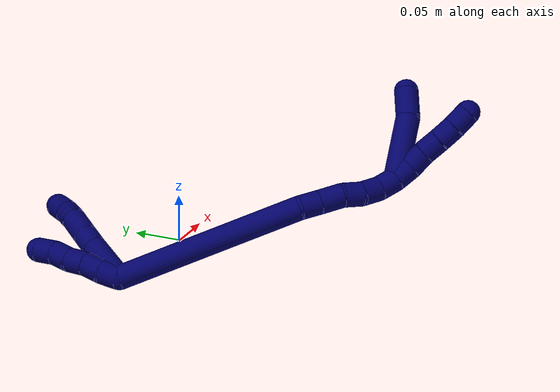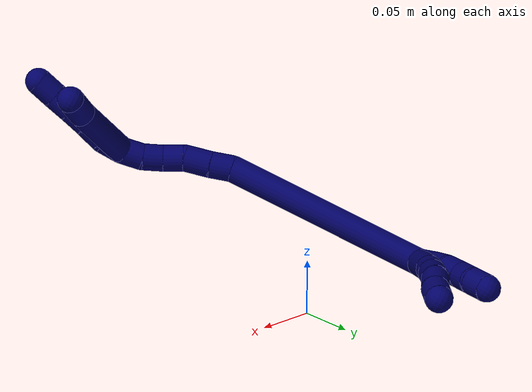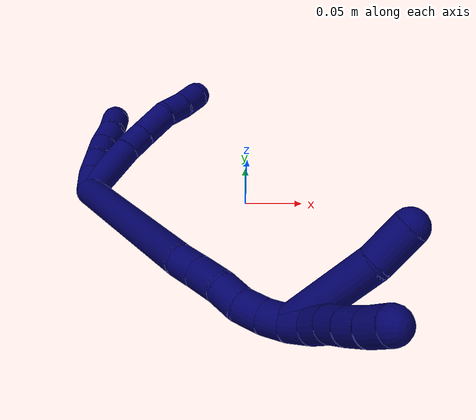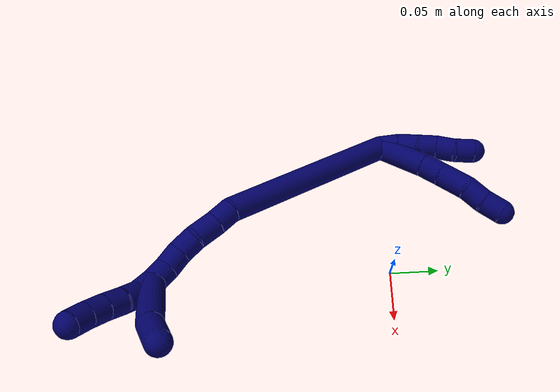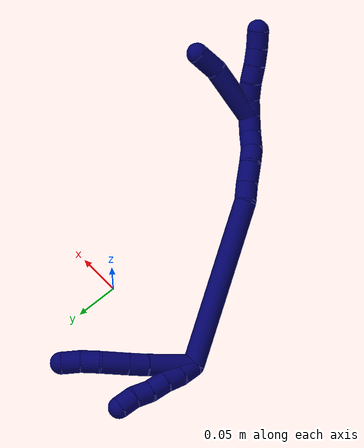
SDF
<sdf version="1.7">
 <world name="default">
  <model name="photoneo_s_sensor">
   <static>1</static>
   <pose>0 0 2 1.57079 1.57079 3.14159</pose>
   <link name="link">
    <inertial><mass>0.1</mass></inertial>
    <sensor name="sensor" type="depth">
     <update_rate>30</update_rate>
     <camera>
      <horizontal_fov>1.22</horizontal_fov>
      <image><width>1920</width><height>1200</height><format>B8G8R8</format></image>
      <clip><near>0.1</near><far>4</far></clip>
      <depth_camera><output>points</output></depth_camera>
     </camera>
     <plugin name="camera_plugin" filename="libgazebo_ros_depth_camera.so">
      <baseline>0.2</baseline>
      <alwaysOn>1</alwaysOn>
      <updateRate>0.0</updateRate>
      <cameraName>camera_ir</cameraName>
      <imageTopicName>/camera/color/image_raw</imageTopicName>
      <cameraInfoTopicName>/camera/color/camera_info</cameraInfoTopicName>
      <depthImageTopicName>/camera/depth/image_raw</depthImageTopicName>
      <depthImageCameraInfoTopicName>/camera/depth/camera_info</depthImageCameraInfoTopicName>
      <pointCloudTopicName>/camera/depth/points</pointCloudTopicName>
      <frameName>fr_optical</frameName>
      <pointCloudCutoff>0.1</pointCloudCutoff>
      <pointCloudCutoffMax>2.0</pointCloudCutoffMax>
      <distortionK1>0</distortionK1>
      <distortionK2>0</distortionK2>
      <distortionK3>0</distortionK3>
      <distortionT1>0</distortionT1>
      <distortionT2>0</distortionT2>
      <CxPrime>0</CxPrime>
      <Cx>0</Cx>
      <Cy>0</Cy>
      <focalLength>0</focalLength>
      <hackBaseline>0</hackBaseline>
     </plugin>
    </sensor>
   </link>
  </model>
  <model name="bin">
   <static>1</static>
   <link name="bottom">
    <collision name="collision-bottom">
     <pose>0 0 -0.01 0 -0 0</pose>
     <geometry><box><size>0.8 0.6 0.02</size></box></geometry>
     <surface>
      <friction><ode><mu>100</mu><mu2>100</mu2></ode></friction>
      <contact><collide_bitmask>65535</collide_bitmask></contact>
     </surface>
    </collision>
   </link>
   <link name="west_wall">
    <collision name="collision-west_wall">
     <pose>-0.41 0 0.1 0 -0 0</pose>
     <geometry><box><size>0.02 0.6 0.2</size></box></geometry>
     <surface>
      <friction><ode><mu>100</mu><mu2>100</mu2></ode></friction>
      <contact><collide_bitmask>65535</collide_bitmask></contact>
     </surface>
    </collision>
   </link>
   <link name="east_wall">
    <collision name="collision-east_wall">
     <pose>0.41 0 0.1 0 -0 0</pose>
     <geometry><box><size>0.02 0.6 0.2</size></box></geometry>
     <surface>
      <friction><ode><mu>100</mu><mu2>100</mu2></ode></friction>
      <contact><collide_bitmask>65535</collide_bitmask></contact>
     </surface>
    </collision>
   </link>
   <link name="south_wall">
    <collision name="collision-south_wall">
     <pose>0 -0.31 0.1 0 -0 0</pose>
     <geometry><box><size>0.8 0.02 0.2</size></box></geometry>
     <surface>
      <friction><ode><mu>100</mu><mu2>100</mu2></ode></friction>
      <contact><collide_bitmask>65535</collide_bitmask></contact>
     </surface>
    </collision>
   </link>
   <link name="north_wall">
    <collision name="collision-north_wall">
     <pose>0 0.31 0.1 0 -0 0</pose>
     <geometry><box><size>0.8 0.02 0.2</size></box></geometry>
     <surface>
      <friction><ode><mu>100</mu><mu2>100</mu2></ode></friction>
      <contact><collide_bitmask>65535</collide_bitmask></contact>
     </surface>
    </collision>
   </link>
  </model>
  <model name="7">
   <static>0</static>
   <link name="7">
    <collision name="collision-cylinder-e_1_2_8">
     <pose>-0.00747 0.025771 0.000795 -1.53995 -0.281994 0.273535</pose>
     <geometry><cylinder><radius>0.0125</radius><length>0.053687</length></cylinder></geometry>
     <surface>
      <friction><ode><mu>1.16</mu><mu2>1.16</mu2><slip1>0</slip1><slip2>0</slip2></ode></friction>
      <contact><ode><kp>1e+06</kp><kd>1</kd><max_vel>0</max_vel><min_depth>0.001</min_depth></ode></contact>
     </surface>
    </collision>
    <visual name="visual-cylinder-e_1_2_8">
     <pose>-0.00747 0.025771 0.000795 -1.53995 -0.281994 0.273535</pose>
     <geometry><cylinder><radius>0.0125</radius><length>0.053687</length></cylinder></geometry>
     <material><ambient>0.003922 0 0.403922 1</ambient></material>
    </visual>
    <collision name="collision-cylinder-e_2_8_9">
     <pose>-0.017144 0.062168 0.002315 -1.50277 -0.204123 0.190773</pose>
     <geometry><cylinder><radius>0.0125</radius><length>0.021754</length></cylinder></geometry>
     <surface>
      <friction><ode><mu>1.16</mu><mu2>1.16</mu2><slip1>0</slip1><slip2>0</slip2></ode></friction>
      <contact><ode><kp>1e+06</kp><kd>1</kd><max_vel>0</max_vel><min_depth>0.001</min_depth></ode></contact>
     </surface>
    </collision>
    <visual name="visual-cylinder-e_2_8_9">
     <pose>-0.017144 0.062168 0.002315 -1.50277 -0.204123 0.190773</pose>
     <geometry><cylinder><radius>0.0125</radius><length>0.021754</length></cylinder></geometry>
     <material><ambient>0.003922 0 0.403922 1</ambient></material>
    </visual>
    <collision name="collision-cylinder-e_3_9_10">
     <pose>-0.022413 0.088092 0.00423 -1.49307 -0.19707 0.182402</pose>
     <geometry><cylinder><radius>0.0125</radius><length>0.031294</length></cylinder></geometry>
     <surface>
      <friction><ode><mu>1.16</mu><mu2>1.16</mu2><slip1>0</slip1><slip2>0</slip2></ode></friction>
      <contact><ode><kp>1e+06</kp><kd>1</kd><max_vel>0</max_vel><min_depth>0.001</min_depth></ode></contact>
     </surface>
    </collision>
    <visual name="visual-cylinder-e_3_9_10">
     <pose>-0.022413 0.088092 0.00423 -1.49307 -0.19707 0.182402</pose>
     <geometry><cylinder><radius>0.0125</radius><length>0.031294</length></cylinder></geometry>
     <material><ambient>0.003922 0 0.403922 1</ambient></material>
    </visual>
    <collision name="collision-cylinder-e_4_10_11">
     <pose>-0.024771 0.114197 0.005845 -1.5316 0.065144 -0.062641</pose>
     <geometry><cylinder><radius>0.0125</radius><length>0.021677</length></cylinder></geometry>
     <surface>
      <friction><ode><mu>1.16</mu><mu2>1.16</mu2><slip1>0</slip1><slip2>0</slip2></ode></friction>
      <contact><ode><kp>1e+06</kp><kd>1</kd><max_vel>0</max_vel><min_depth>0.001</min_depth></ode></contact>
     </surface>
    </collision>
    <visual name="visual-cylinder-e_4_10_11">
     <pose>-0.024771 0.114197 0.005845 -1.5316 0.065144 -0.062641</pose>
     <geometry><cylinder><radius>0.0125</radius><length>0.021677</length></cylinder></geometry>
     <material><ambient>0.003922 0 0.403922 1</ambient></material>
    </visual>
    <collision name="collision-cylinder-e_5_11_6">
     <pose>-0.02433 0.135756 0.005343 -1.65672 -0.024566 0.026773</pose>
     <geometry><cylinder><radius>0.0125</radius><length>0.021589</length></cylinder></geometry>
     <surface>
      <friction><ode><mu>1.16</mu><mu2>1.16</mu2><slip1>0</slip1><slip2>0</slip2></ode></friction>
      <contact><ode><kp>1e+06</kp><kd>1</kd><max_vel>0</max_vel><min_depth>0.001</min_depth></ode></contact>
     </surface>
    </collision>
    <visual name="visual-cylinder-e_5_11_6">
     <pose>-0.02433 0.135756 0.005343 -1.65672 -0.024566 0.026773</pose>
     <geometry><cylinder><radius>0.0125</radius><length>0.021589</length></cylinder></geometry>
     <material><ambient>0.003922 0 0.403922 1</ambient></material>
    </visual>
    <collision name="collision-cylinder-e_1_2_12">
     <pose>-0.004495 0.007405 -0.004996 -2.16432 -0.466246 0.840079</pose>
     <geometry><cylinder><radius>0.0125</radius><length>0.02</length></cylinder></geometry>
     <surface>
      <friction><ode><mu>1.16</mu><mu2>1.16</mu2><slip1>0</slip1><slip2>0</slip2></ode></friction>
      <contact><ode><kp>1e+06</kp><kd>1</kd><max_vel>0</max_vel><min_depth>0.001</min_depth></ode></contact>
     </surface>
    </collision>
    <visual name="visual-cylinder-e_1_2_12">
     <pose>-0.004495 0.007405 -0.004996 -2.16432 -0.466246 0.840079</pose>
     <geometry><cylinder><radius>0.0125</radius><length>0.02</length></cylinder></geometry>
     <material><ambient>0.003922 0 0.403922 1</ambient></material>
    </visual>
    <collision name="collision-cylinder-e_2_12_13">
     <pose>-0.012945 0.023295 -0.013509 -1.96374 -0.406518 0.598547</pose>
     <geometry><cylinder><radius>0.0125</radius><length>0.02</length></cylinder></geometry>
     <surface>
      <friction><ode><mu>1.16</mu><mu2>1.16</mu2><slip1>0</slip1><slip2>0</slip2></ode></friction>
      <contact><ode><kp>1e+06</kp><kd>1</kd><max_vel>0</max_vel><min_depth>0.001</min_depth></ode></contact>
     </surface>
    </collision>
    <visual name="visual-cylinder-e_2_12_13">
     <pose>-0.012945 0.023295 -0.013509 -1.96374 -0.406518 0.598547</pose>
     <geometry><cylinder><radius>0.0125</radius><length>0.02</length></cylinder></geometry>
     <material><ambient>0.003922 0 0.403922 1</ambient></material>
    </visual>
    <collision name="collision-cylinder-e_3_13_14">
     <pose>-0.019663 0.039986 -0.022028 -2.11824 -0.280005 0.491745</pose>
     <geometry><cylinder><radius>0.0125</radius><length>0.02</length></cylinder></geometry>
     <surface>
      <friction><ode><mu>1.16</mu><mu2>1.16</mu2><slip1>0</slip1><slip2>0</slip2></ode></friction>
      <contact><ode><kp>1e+06</kp><kd>1</kd><max_vel>0</max_vel><min_depth>0.001</min_depth></ode></contact>
     </surface>
    </collision>
    <visual name="visual-cylinder-e_3_13_14">
     <pose>-0.019663 0.039986 -0.022028 -2.11824 -0.280005 0.491745</pose>
     <geometry><cylinder><radius>0.0125</radius><length>0.02</length></cylinder></geometry>
     <material><ambient>0.003922 0 0.403922 1</ambient></material>
    </visual>
    <collision name="collision-cylinder-e_4_14_15">
     <pose>-0.025261 0.057258 -0.030156 -1.90274 -0.287463 0.400509</pose>
     <geometry><cylinder><radius>0.0125</radius><length>0.02</length></cylinder></geometry>
     <surface>
      <friction><ode><mu>1.16</mu><mu2>1.16</mu2><slip1>0</slip1><slip2>0</slip2></ode></friction>
      <contact><ode><kp>1e+06</kp><kd>1</kd><max_vel>0</max_vel><min_depth>0.001</min_depth></ode></contact>
     </surface>
    </collision>
    <visual name="visual-cylinder-e_4_14_15">
     <pose>-0.025261 0.057258 -0.030156 -1.90274 -0.287463 0.400509</pose>
     <geometry><cylinder><radius>0.0125</radius><length>0.02</length></cylinder></geometry>
     <material><ambient>0.003922 0 0.403922 1</ambient></material>
    </visual>
    <collision name="collision-cylinder-e_5_15_5">
     <pose>-0.030608 0.074309 -0.038752 -2.17158 -0.253903 0.475254</pose>
     <geometry><cylinder><radius>0.0125</radius><length>0.02</length></cylinder></geometry>
     <surface>
      <friction><ode><mu>1.16</mu><mu2>1.16</mu2><slip1>0</slip1><slip2>0</slip2></ode></friction>
      <contact><ode><kp>1e+06</kp><kd>1</kd><max_vel>0</max_vel><min_depth>0.001</min_depth></ode></contact>
     </surface>
    </collision>
    <visual name="visual-cylinder-e_5_15_5">
     <pose>-0.030608 0.074309 -0.038752 -2.17158 -0.253903 0.475254</pose>
     <geometry><cylinder><radius>0.0125</radius><length>0.02</length></cylinder></geometry>
     <material><ambient>0.003922 0 0.403922 1</ambient></material>
    </visual>
    <collision name="collision-cylinder-e_1_2_16">
     <pose>0.011202 -0.029722 0.091763 0.313238 0.115619 0.018278</pose>
     <geometry><cylinder><radius>0.0125</radius><length>0.19421</length></cylinder></geometry>
     <surface>
      <friction><ode><mu>1.16</mu><mu2>1.16</mu2><slip1>0</slip1><slip2>0</slip2></ode></friction>
      <contact><ode><kp>1e+06</kp><kd>1</kd><max_vel>0</max_vel><min_depth>0.001</min_depth></ode></contact>
     </surface>
    </collision>
    <visual name="visual-cylinder-e_1_2_16">
     <pose>0.011202 -0.029722 0.091763 0.313238 0.115619 0.018278</pose>
     <geometry><cylinder><radius>0.0125</radius><length>0.19421</length></cylinder></geometry>
     <material><ambient>0.003922 0 0.403922 1</ambient></material>
    </visual>
    <collision name="collision-cylinder-e_2_16_17">
     <pose>0.025939 -0.060495 0.193287 0.107225 0.345624 0.018734</pose>
     <geometry><cylinder><radius>0.0125</radius><length>0.020867</length></cylinder></geometry>
     <surface>
      <friction><ode><mu>1.16</mu><mu2>1.16</mu2><slip1>0</slip1><slip2>0</slip2></ode></friction>
      <contact><ode><kp>1e+06</kp><kd>1</kd><max_vel>0</max_vel><min_depth>0.001</min_depth></ode></contact>
     </surface>
    </collision>
    <visual name="visual-cylinder-e_2_16_17">
     <pose>0.025939 -0.060495 0.193287 0.107225 0.345624 0.018734</pose>
     <geometry><cylinder><radius>0.0125</radius><length>0.020867</length></cylinder></geometry>
     <material><ambient>0.003922 0 0.403922 1</ambient></material>
    </visual>
    <collision name="collision-cylinder-e_3_17_18">
     <pose>0.033025 -0.063503 0.214685 0.166657 0.292311 0.024588</pose>
     <geometry><cylinder><radius>0.0125</radius><length>0.024649</length></cylinder></geometry>
     <surface>
      <friction><ode><mu>1.16</mu><mu2>1.16</mu2><slip1>0</slip1><slip2>0</slip2></ode></friction>
      <contact><ode><kp>1e+06</kp><kd>1</kd><max_vel>0</max_vel><min_depth>0.001</min_depth></ode></contact>
     </surface>
    </collision>
    <visual name="visual-cylinder-e_3_17_18">
     <pose>0.033025 -0.063503 0.214685 0.166657 0.292311 0.024588</pose>
     <geometry><cylinder><radius>0.0125</radius><length>0.024649</length></cylinder></geometry>
     <material><ambient>0.003922 0 0.403922 1</ambient></material>
    </visual>
    <collision name="collision-cylinder-e_4_18_19">
     <pose>0.041905 -0.066707 0.234822 0.145617 0.555246 0.041566</pose>
     <geometry><cylinder><radius>0.0125</radius><length>0.020216</length></cylinder></geometry>
     <surface>
      <friction><ode><mu>1.16</mu><mu2>1.16</mu2><slip1>0</slip1><slip2>0</slip2></ode></friction>
      <contact><ode><kp>1e+06</kp><kd>1</kd><max_vel>0</max_vel><min_depth>0.001</min_depth></ode></contact>
     </surface>
    </collision>
    <visual name="visual-cylinder-e_4_18_19">
     <pose>0.041905 -0.066707 0.234822 0.145617 0.555246 0.041566</pose>
     <geometry><cylinder><radius>0.0125</radius><length>0.020216</length></cylinder></geometry>
     <material><ambient>0.003922 0 0.403922 1</ambient></material>
    </visual>
    <collision name="collision-cylinder-e_5_19_20">
     <pose>0.051265 -0.067221 0.252473 -0.079909 0.41373 -0.016779</pose>
     <geometry><cylinder><radius>0.0125</radius><length>0.020055</length></cylinder></geometry>
     <surface>
      <friction><ode><mu>1.16</mu><mu2>1.16</mu2><slip1>0</slip1><slip2>0</slip2></ode></friction>
      <contact><ode><kp>1e+06</kp><kd>1</kd><max_vel>0</max_vel><min_depth>0.001</min_depth></ode></contact>
     </surface>
    </collision>
    <visual name="visual-cylinder-e_5_19_20">
     <pose>0.051265 -0.067221 0.252473 -0.079909 0.41373 -0.016779</pose>
     <geometry><cylinder><radius>0.0125</radius><length>0.020055</length></cylinder></geometry>
     <material><ambient>0.003922 0 0.403922 1</ambient></material>
    </visual>
    <collision name="collision-cylinder-e_6_20_1">
     <pose>0.056906 -0.066066 0.271487 -0.042818 0.161636 -0.003469</pose>
     <geometry><cylinder><radius>0.0125</radius><length>0.020002</length></cylinder></geometry>
     <surface>
      <friction><ode><mu>1.16</mu><mu2>1.16</mu2><slip1>0</slip1><slip2>0</slip2></ode></friction>
      <contact><ode><kp>1e+06</kp><kd>1</kd><max_vel>0</max_vel><min_depth>0.001</min_depth></ode></contact>
     </surface>
    </collision>
    <visual name="visual-cylinder-e_6_20_1">
     <pose>0.056906 -0.066066 0.271487 -0.042818 0.161636 -0.003469</pose>
     <geometry><cylinder><radius>0.0125</radius><length>0.020002</length></cylinder></geometry>
     <material><ambient>0.003922 0 0.403922 1</ambient></material>
    </visual>
    <collision name="collision-cylinder-e_1_1_21">
     <pose>0.058111 -0.065424 0.291338 -0.021958 -0.040525 0.000445</pose>
     <geometry><cylinder><radius>0.0125</radius><length>0.02</length></cylinder></geometry>
     <surface>
      <friction><ode><mu>1.16</mu><mu2>1.16</mu2><slip1>0</slip1><slip2>0</slip2></ode></friction>
      <contact><ode><kp>1e+06</kp><kd>1</kd><max_vel>0</max_vel><min_depth>0.001</min_depth></ode></contact>
     </surface>
    </collision>
    <visual name="visual-cylinder-e_1_1_21">
     <pose>0.058111 -0.065424 0.291338 -0.021958 -0.040525 0.000445</pose>
     <geometry><cylinder><radius>0.0125</radius><length>0.02</length></cylinder></geometry>
     <material><ambient>0.003922 0 0.403922 1</ambient></material>
    </visual>
    <collision name="collision-cylinder-e_2_21_22">
     <pose>0.054948 -0.066276 0.31088 0.111776 -0.279337 -0.01573</pose>
     <geometry><cylinder><radius>0.0125</radius><length>0.02</length></cylinder></geometry>
     <surface>
      <friction><ode><mu>1.16</mu><mu2>1.16</mu2><slip1>0</slip1><slip2>0</slip2></ode></friction>
      <contact><ode><kp>1e+06</kp><kd>1</kd><max_vel>0</max_vel><min_depth>0.001</min_depth></ode></contact>
     </surface>
    </collision>
    <visual name="visual-cylinder-e_2_21_22">
     <pose>0.054948 -0.066276 0.31088 0.111776 -0.279337 -0.01573</pose>
     <geometry><cylinder><radius>0.0125</radius><length>0.02</length></cylinder></geometry>
     <material><ambient>0.003922 0 0.403922 1</ambient></material>
    </visual>
    <collision name="collision-cylinder-e_3_22_23">
     <pose>0.05026 -0.069382 0.330031 0.208736 -0.194341 -0.020421</pose>
     <geometry><cylinder><radius>0.0125</radius><length>0.02</length></cylinder></geometry>
     <surface>
      <friction><ode><mu>1.16</mu><mu2>1.16</mu2><slip1>0</slip1><slip2>0</slip2></ode></friction>
      <contact><ode><kp>1e+06</kp><kd>1</kd><max_vel>0</max_vel><min_depth>0.001</min_depth></ode></contact>
     </surface>
    </collision>
    <visual name="visual-cylinder-e_3_22_23">
     <pose>0.05026 -0.069382 0.330031 0.208736 -0.194341 -0.020421</pose>
     <geometry><cylinder><radius>0.0125</radius><length>0.02</length></cylinder></geometry>
     <material><ambient>0.003922 0 0.403922 1</ambient></material>
    </visual>
    <collision name="collision-cylinder-e_4_23_24">
     <pose>0.04639 -0.072776 0.349345 0.139185 -0.195148 -0.013646</pose>
     <geometry><cylinder><radius>0.0125</radius><length>0.02</length></cylinder></geometry>
     <surface>
      <friction><ode><mu>1.16</mu><mu2>1.16</mu2><slip1>0</slip1><slip2>0</slip2></ode></friction>
      <contact><ode><kp>1e+06</kp><kd>1</kd><max_vel>0</max_vel><min_depth>0.001</min_depth></ode></contact>
     </surface>
    </collision>
    <visual name="visual-cylinder-e_4_23_24">
     <pose>0.04639 -0.072776 0.349345 0.139185 -0.195148 -0.013646</pose>
     <geometry><cylinder><radius>0.0125</radius><length>0.02</length></cylinder></geometry>
     <material><ambient>0.003922 0 0.403922 1</ambient></material>
    </visual>
    <collision name="collision-cylinder-e_5_24_4">
     <pose>0.042038 -0.074644 0.368752 0.052287 -0.243649 -0.006403</pose>
     <geometry><cylinder><radius>0.0125</radius><length>0.02</length></cylinder></geometry>
     <surface>
      <friction><ode><mu>1.16</mu><mu2>1.16</mu2><slip1>0</slip1><slip2>0</slip2></ode></friction>
      <contact><ode><kp>1e+06</kp><kd>1</kd><max_vel>0</max_vel><min_depth>0.001</min_depth></ode></contact>
     </surface>
    </collision>
    <visual name="visual-cylinder-e_5_24_4">
     <pose>0.042038 -0.074644 0.368752 0.052287 -0.243649 -0.006403</pose>
     <geometry><cylinder><radius>0.0125</radius><length>0.02</length></cylinder></geometry>
     <material><ambient>0.003922 0 0.403922 1</ambient></material>
    </visual>
    <collision name="collision-cylinder-e_1_1_25">
     <pose>0.045646 -0.046338 0.307278 -0.639996 -0.378877 0.126908</pose>
     <geometry><cylinder><radius>0.0125</radius><length>0.069589</length></cylinder></geometry>
     <surface>
      <friction><ode><mu>1.16</mu><mu2>1.16</mu2><slip1>0</slip1><slip2>0</slip2></ode></friction>
      <contact><ode><kp>1e+06</kp><kd>1</kd><max_vel>0</max_vel><min_depth>0.001</min_depth></ode></contact>
     </surface>
    </collision>
    <visual name="visual-cylinder-e_1_1_25">
     <pose>0.045646 -0.046338 0.307278 -0.639996 -0.378877 0.126908</pose>
     <geometry><cylinder><radius>0.0125</radius><length>0.069589</length></cylinder></geometry>
     <material><ambient>0.003922 0 0.403922 1</ambient></material>
    </visual>
    <collision name="collision-cylinder-e_2_25_3">
     <pose>0.026074 -0.016406 0.341773 -0.892313 -0.456452 0.221296</pose>
     <geometry><cylinder><radius>0.0125</radius><length>0.030411</length></cylinder></geometry>
     <surface>
      <friction><ode><mu>1.16</mu><mu2>1.16</mu2><slip1>0</slip1><slip2>0</slip2></ode></friction>
      <contact><ode><kp>1e+06</kp><kd>1</kd><max_vel>0</max_vel><min_depth>0.001</min_depth></ode></contact>
     </surface>
    </collision>
    <visual name="visual-cylinder-e_2_25_3">
     <pose>0.026074 -0.016406 0.341773 -0.892313 -0.456452 0.221296</pose>
     <geometry><cylinder><radius>0.0125</radius><length>0.030411</length></cylinder></geometry>
     <material><ambient>0.003922 0 0.403922 1</ambient></material>
    </visual>
    <collision name="collision-sphere-3">
     <pose>0.019372 -0.00578 0.35034 0 -0 0</pose>
     <geometry><sphere><radius>0.0125</radius></sphere></geometry>
     <surface>
      <friction><ode><mu>1.16</mu><mu2>1.16</mu2><slip1>0</slip1><slip2>0</slip2></ode></friction>
      <contact><ode><kp>1e+06</kp><kd>1</kd><max_vel>0</max_vel><min_depth>0.001</min_depth></ode></contact>
     </surface>
    </collision>
    <visual name="visual-sphere-3">
     <pose>0.019372 -0.00578 0.35034 0 -0 0</pose>
     <geometry><sphere><radius>0.0125</radius></sphere></geometry>
     <material><ambient>0.003922 0 0.403922 1</ambient></material>
    </visual>
    <collision name="collision-sphere-25">
     <pose>0.032776 -0.027032 0.333207 0 -0 0</pose>
     <geometry><sphere><radius>0.0125</radius></sphere></geometry>
     <surface>
      <friction><ode><mu>1.16</mu><mu2>1.16</mu2><slip1>0</slip1><slip2>0</slip2></ode></friction>
      <contact><ode><kp>1e+06</kp><kd>1</kd><max_vel>0</max_vel><min_depth>0.001</min_depth></ode></contact>
     </surface>
    </collision>
    <visual name="visual-sphere-25">
     <pose>0.032776 -0.027032 0.333207 0 -0 0</pose>
     <geometry><sphere><radius>0.0125</radius></sphere></geometry>
     <material><ambient>0.003922 0 0.403922 1</ambient></material>
    </visual>
    <collision name="collision-sphere-4">
     <pose>0.039625 -0.075152 0.378443 0 -0 0</pose>
     <geometry><sphere><radius>0.0125</radius></sphere></geometry>
     <surface>
      <friction><ode><mu>1.16</mu><mu2>1.16</mu2><slip1>0</slip1><slip2>0</slip2></ode></friction>
      <contact><ode><kp>1e+06</kp><kd>1</kd><max_vel>0</max_vel><min_depth>0.001</min_depth></ode></contact>
     </surface>
    </collision>
    <visual name="visual-sphere-4">
     <pose>0.039625 -0.075152 0.378443 0 -0 0</pose>
     <geometry><sphere><radius>0.0125</radius></sphere></geometry>
     <material><ambient>0.003922 0 0.403922 1</ambient></material>
    </visual>
    <collision name="collision-sphere-24">
     <pose>0.04445 -0.074137 0.35906 0 -0 0</pose>
     <geometry><sphere><radius>0.0125</radius></sphere></geometry>
     <surface>
      <friction><ode><mu>1.16</mu><mu2>1.16</mu2><slip1>0</slip1><slip2>0</slip2></ode></friction>
      <contact><ode><kp>1e+06</kp><kd>1</kd><max_vel>0</max_vel><min_depth>0.001</min_depth></ode></contact>
     </surface>
    </collision>
    <visual name="visual-sphere-24">
     <pose>0.04445 -0.074137 0.35906 0 -0 0</pose>
     <geometry><sphere><radius>0.0125</radius></sphere></geometry>
     <material><ambient>0.003922 0 0.403922 1</ambient></material>
    </visual>
    <collision name="collision-sphere-23">
     <pose>0.048329 -0.071415 0.33963 0 -0 0</pose>
     <geometry><sphere><radius>0.0125</radius></sphere></geometry>
     <surface>
      <friction><ode><mu>1.16</mu><mu2>1.16</mu2><slip1>0</slip1><slip2>0</slip2></ode></friction>
      <contact><ode><kp>1e+06</kp><kd>1</kd><max_vel>0</max_vel><min_depth>0.001</min_depth></ode></contact>
     </surface>
    </collision>
    <visual name="visual-sphere-23">
     <pose>0.048329 -0.071415 0.33963 0 -0 0</pose>
     <geometry><sphere><radius>0.0125</radius></sphere></geometry>
     <material><ambient>0.003922 0 0.403922 1</ambient></material>
    </visual>
    <collision name="collision-sphere-22">
     <pose>0.052191 -0.067349 0.320432 0 -0 0</pose>
     <geometry><sphere><radius>0.0125</radius></sphere></geometry>
     <surface>
      <friction><ode><mu>1.16</mu><mu2>1.16</mu2><slip1>0</slip1><slip2>0</slip2></ode></friction>
      <contact><ode><kp>1e+06</kp><kd>1</kd><max_vel>0</max_vel><min_depth>0.001</min_depth></ode></contact>
     </surface>
    </collision>
    <visual name="visual-sphere-22">
     <pose>0.052191 -0.067349 0.320432 0 -0 0</pose>
     <geometry><sphere><radius>0.0125</radius></sphere></geometry>
     <material><ambient>0.003922 0 0.403922 1</ambient></material>
    </visual>
    <collision name="collision-sphere-21">
     <pose>0.057705 -0.065204 0.301327 0 -0 0</pose>
     <geometry><sphere><radius>0.0125</radius></sphere></geometry>
     <surface>
      <friction><ode><mu>1.16</mu><mu2>1.16</mu2><slip1>0</slip1><slip2>0</slip2></ode></friction>
      <contact><ode><kp>1e+06</kp><kd>1</kd><max_vel>0</max_vel><min_depth>0.001</min_depth></ode></contact>
     </surface>
    </collision>
    <visual name="visual-sphere-21">
     <pose>0.057705 -0.065204 0.301327 0 -0 0</pose>
     <geometry><sphere><radius>0.0125</radius></sphere></geometry>
     <material><ambient>0.003922 0 0.403922 1</ambient></material>
    </visual>
    <collision name="collision-sphere-1">
     <pose>0.058516 -0.065643 0.281349 0 -0 0</pose>
     <geometry><sphere><radius>0.0125</radius></sphere></geometry>
     <surface>
      <friction><ode><mu>1.16</mu><mu2>1.16</mu2><slip1>0</slip1><slip2>0</slip2></ode></friction>
      <contact><ode><kp>1e+06</kp><kd>1</kd><max_vel>0</max_vel><min_depth>0.001</min_depth></ode></contact>
     </surface>
    </collision>
    <visual name="visual-sphere-1">
     <pose>0.058516 -0.065643 0.281349 0 -0 0</pose>
     <geometry><sphere><radius>0.0125</radius></sphere></geometry>
     <material><ambient>0.003922 0 0.403922 1</ambient></material>
    </visual>
    <collision name="collision-sphere-6">
     <pose>-0.024596 0.146507 0.004417 0 -0 0</pose>
     <geometry><sphere><radius>0.0125</radius></sphere></geometry>
     <surface>
      <friction><ode><mu>1.16</mu><mu2>1.16</mu2><slip1>0</slip1><slip2>0</slip2></ode></friction>
      <contact><ode><kp>1e+06</kp><kd>1</kd><max_vel>0</max_vel><min_depth>0.001</min_depth></ode></contact>
     </surface>
    </collision>
    <visual name="visual-sphere-6">
     <pose>-0.024596 0.146507 0.004417 0 -0 0</pose>
     <geometry><sphere><radius>0.0125</radius></sphere></geometry>
     <material><ambient>0.003922 0 0.403922 1</ambient></material>
    </visual>
    <collision name="collision-sphere-11">
     <pose>-0.024065 0.125005 0.006269 0 -0 0</pose>
     <geometry><sphere><radius>0.0125</radius></sphere></geometry>
     <surface>
      <friction><ode><mu>1.16</mu><mu2>1.16</mu2><slip1>0</slip1><slip2>0</slip2></ode></friction>
      <contact><ode><kp>1e+06</kp><kd>1</kd><max_vel>0</max_vel><min_depth>0.001</min_depth></ode></contact>
     </surface>
    </collision>
    <visual name="visual-sphere-11">
     <pose>-0.024065 0.125005 0.006269 0 -0 0</pose>
     <geometry><sphere><radius>0.0125</radius></sphere></geometry>
     <material><ambient>0.003922 0 0.403922 1</ambient></material>
    </visual>
    <collision name="collision-sphere-10">
     <pose>-0.025476 0.10339 0.005422 0 -0 0</pose>
     <geometry><sphere><radius>0.0125</radius></sphere></geometry>
     <surface>
      <friction><ode><mu>1.16</mu><mu2>1.16</mu2><slip1>0</slip1><slip2>0</slip2></ode></friction>
      <contact><ode><kp>1e+06</kp><kd>1</kd><max_vel>0</max_vel><min_depth>0.001</min_depth></ode></contact>
     </surface>
    </collision>
    <visual name="visual-sphere-10">
     <pose>-0.025476 0.10339 0.005422 0 -0 0</pose>
     <geometry><sphere><radius>0.0125</radius></sphere></geometry>
     <material><ambient>0.003922 0 0.403922 1</ambient></material>
    </visual>
    <collision name="collision-sphere-9">
     <pose>-0.019349 0.072795 0.003039 0 -0 0</pose>
     <geometry><sphere><radius>0.0125</radius></sphere></geometry>
     <surface>
      <friction><ode><mu>1.16</mu><mu2>1.16</mu2><slip1>0</slip1><slip2>0</slip2></ode></friction>
      <contact><ode><kp>1e+06</kp><kd>1</kd><max_vel>0</max_vel><min_depth>0.001</min_depth></ode></contact>
     </surface>
    </collision>
    <visual name="visual-sphere-9">
     <pose>-0.019349 0.072795 0.003039 0 -0 0</pose>
     <geometry><sphere><radius>0.0125</radius></sphere></geometry>
     <material><ambient>0.003922 0 0.403922 1</ambient></material>
    </visual>
    <collision name="collision-sphere-2">
     <geometry><sphere><radius>0.0125</radius></sphere></geometry>
     <surface>
      <friction><ode><mu>1.16</mu><mu2>1.16</mu2><slip1>0</slip1><slip2>0</slip2></ode></friction>
      <contact><ode><kp>1e+06</kp><kd>1</kd><max_vel>0</max_vel><min_depth>0.001</min_depth></ode></contact>
     </surface>
    </collision>
    <visual name="visual-sphere-2">
     <geometry><sphere><radius>0.0125</radius></sphere></geometry>
     <material><ambient>0.003922 0 0.403922 1</ambient></material>
    </visual>
    <collision name="collision-sphere-19">
     <pose>0.047234 -0.067954 0.24332 0 -0 0</pose>
     <geometry><sphere><radius>0.0125</radius></sphere></geometry>
     <surface>
      <friction><ode><mu>1.16</mu><mu2>1.16</mu2><slip1>0</slip1><slip2>0</slip2></ode></friction>
      <contact><ode><kp>1e+06</kp><kd>1</kd><max_vel>0</max_vel><min_depth>0.001</min_depth></ode></contact>
     </surface>
    </collision>
    <visual name="visual-sphere-19">
     <pose>0.047234 -0.067954 0.24332 0 -0 0</pose>
     <geometry><sphere><radius>0.0125</radius></sphere></geometry>
     <material><ambient>0.003922 0 0.403922 1</ambient></material>
    </visual>
    <collision name="collision-sphere-8">
     <pose>-0.01494 0.051542 0.001591 0 -0 0</pose>
     <geometry><sphere><radius>0.0125</radius></sphere></geometry>
     <surface>
      <friction><ode><mu>1.16</mu><mu2>1.16</mu2><slip1>0</slip1><slip2>0</slip2></ode></friction>
      <contact><ode><kp>1e+06</kp><kd>1</kd><max_vel>0</max_vel><min_depth>0.001</min_depth></ode></contact>
     </surface>
    </collision>
    <visual name="visual-sphere-8">
     <pose>-0.01494 0.051542 0.001591 0 -0 0</pose>
     <geometry><sphere><radius>0.0125</radius></sphere></geometry>
     <material><ambient>0.003922 0 0.403922 1</ambient></material>
    </visual>
    <collision name="collision-sphere-12">
     <pose>-0.008991 0.01481 -0.009992 0 -0 0</pose>
     <geometry><sphere><radius>0.0125</radius></sphere></geometry>
     <surface>
      <friction><ode><mu>1.16</mu><mu2>1.16</mu2><slip1>0</slip1><slip2>0</slip2></ode></friction>
      <contact><ode><kp>1e+06</kp><kd>1</kd><max_vel>0</max_vel><min_depth>0.001</min_depth></ode></contact>
     </surface>
    </collision>
    <visual name="visual-sphere-12">
     <pose>-0.008991 0.01481 -0.009992 0 -0 0</pose>
     <geometry><sphere><radius>0.0125</radius></sphere></geometry>
     <material><ambient>0.003922 0 0.403922 1</ambient></material>
    </visual>
    <collision name="collision-sphere-13">
     <pose>-0.016899 0.03178 -0.017026 0 -0 0</pose>
     <geometry><sphere><radius>0.0125</radius></sphere></geometry>
     <surface>
      <friction><ode><mu>1.16</mu><mu2>1.16</mu2><slip1>0</slip1><slip2>0</slip2></ode></friction>
      <contact><ode><kp>1e+06</kp><kd>1</kd><max_vel>0</max_vel><min_depth>0.001</min_depth></ode></contact>
     </surface>
    </collision>
    <visual name="visual-sphere-13">
     <pose>-0.016899 0.03178 -0.017026 0 -0 0</pose>
     <geometry><sphere><radius>0.0125</radius></sphere></geometry>
     <material><ambient>0.003922 0 0.403922 1</ambient></material>
    </visual>
    <collision name="collision-sphere-14">
     <pose>-0.022426 0.048192 -0.027031 0 -0 0</pose>
     <geometry><sphere><radius>0.0125</radius></sphere></geometry>
     <surface>
      <friction><ode><mu>1.16</mu><mu2>1.16</mu2><slip1>0</slip1><slip2>0</slip2></ode></friction>
      <contact><ode><kp>1e+06</kp><kd>1</kd><max_vel>0</max_vel><min_depth>0.001</min_depth></ode></contact>
     </surface>
    </collision>
    <visual name="visual-sphere-14">
     <pose>-0.022426 0.048192 -0.027031 0 -0 0</pose>
     <geometry><sphere><radius>0.0125</radius></sphere></geometry>
     <material><ambient>0.003922 0 0.403922 1</ambient></material>
    </visual>
    <collision name="collision-sphere-15">
     <pose>-0.028097 0.066324 -0.033281 0 -0 0</pose>
     <geometry><sphere><radius>0.0125</radius></sphere></geometry>
     <surface>
      <friction><ode><mu>1.16</mu><mu2>1.16</mu2><slip1>0</slip1><slip2>0</slip2></ode></friction>
      <contact><ode><kp>1e+06</kp><kd>1</kd><max_vel>0</max_vel><min_depth>0.001</min_depth></ode></contact>
     </surface>
    </collision>
    <visual name="visual-sphere-15">
     <pose>-0.028097 0.066324 -0.033281 0 -0 0</pose>
     <geometry><sphere><radius>0.0125</radius></sphere></geometry>
     <material><ambient>0.003922 0 0.403922 1</ambient></material>
    </visual>
    <collision name="collision-sphere-5">
     <pose>-0.03312 0.082293 -0.044224 0 -0 0</pose>
     <geometry><sphere><radius>0.0125</radius></sphere></geometry>
     <surface>
      <friction><ode><mu>1.16</mu><mu2>1.16</mu2><slip1>0</slip1><slip2>0</slip2></ode></friction>
      <contact><ode><kp>1e+06</kp><kd>1</kd><max_vel>0</max_vel><min_depth>0.001</min_depth></ode></contact>
     </surface>
    </collision>
    <visual name="visual-sphere-5">
     <pose>-0.03312 0.082293 -0.044224 0 -0 0</pose>
     <geometry><sphere><radius>0.0125</radius></sphere></geometry>
     <material><ambient>0.003922 0 0.403922 1</ambient></material>
    </visual>
    <collision name="collision-sphere-16">
     <pose>0.022404 -0.059445 0.183527 0 -0 0</pose>
     <geometry><sphere><radius>0.0125</radius></sphere></geometry>
     <surface>
      <friction><ode><mu>1.16</mu><mu2>1.16</mu2><slip1>0</slip1><slip2>0</slip2></ode></friction>
      <contact><ode><kp>1e+06</kp><kd>1</kd><max_vel>0</max_vel><min_depth>0.001</min_depth></ode></contact>
     </surface>
    </collision>
    <visual name="visual-sphere-16">
     <pose>0.022404 -0.059445 0.183527 0 -0 0</pose>
     <geometry><sphere><radius>0.0125</radius></sphere></geometry>
     <material><ambient>0.003922 0 0.403922 1</ambient></material>
    </visual>
    <collision name="collision-sphere-17">
     <pose>0.029474 -0.061546 0.203047 0 -0 0</pose>
     <geometry><sphere><radius>0.0125</radius></sphere></geometry>
     <surface>
      <friction><ode><mu>1.16</mu><mu2>1.16</mu2><slip1>0</slip1><slip2>0</slip2></ode></friction>
      <contact><ode><kp>1e+06</kp><kd>1</kd><max_vel>0</max_vel><min_depth>0.001</min_depth></ode></contact>
     </surface>
    </collision>
    <visual name="visual-sphere-17">
     <pose>0.029474 -0.061546 0.203047 0 -0 0</pose>
     <geometry><sphere><radius>0.0125</radius></sphere></geometry>
     <material><ambient>0.003922 0 0.403922 1</ambient></material>
    </visual>
    <collision name="collision-sphere-18">
     <pose>0.036577 -0.065461 0.226323 0 -0 0</pose>
     <geometry><sphere><radius>0.0125</radius></sphere></geometry>
     <surface>
      <friction><ode><mu>1.16</mu><mu2>1.16</mu2><slip1>0</slip1><slip2>0</slip2></ode></friction>
      <contact><ode><kp>1e+06</kp><kd>1</kd><max_vel>0</max_vel><min_depth>0.001</min_depth></ode></contact>
     </surface>
    </collision>
    <visual name="visual-sphere-18">
     <pose>0.036577 -0.065461 0.226323 0 -0 0</pose>
     <geometry><sphere><radius>0.0125</radius></sphere></geometry>
     <material><ambient>0.003922 0 0.403922 1</ambient></material>
    </visual>
    <collision name="collision-sphere-20">
     <pose>0.055297 -0.066488 0.261625 0 -0 0</pose>
     <geometry><sphere><radius>0.0125</radius></sphere></geometry>
     <surface>
      <friction><ode><mu>1.16</mu><mu2>1.16</mu2><slip1>0</slip1><slip2>0</slip2></ode></friction>
      <contact><ode><kp>1e+06</kp><kd>1</kd><max_vel>0</max_vel><min_depth>0.001</min_depth></ode></contact>
     </surface>
    </collision>
    <visual name="visual-sphere-20">
     <pose>0.055297 -0.066488 0.261625 0 -0 0</pose>
     <geometry><sphere><radius>0.0125</radius></sphere></geometry>
     <material><ambient>0.003922 0 0.403922 1</ambient></material>
    </visual>
    <inertial>
     <pose>0.014869 -0.011157 0.1406 0 -0 0</pose>
     <mass>0.75</mass>
     <inertia>
      <ixx>0.000708</ixx>
      <ixy>0</ixy>
      <ixz>0</ixz>
      <iyy>0.000672</iyy>
      <iyz>0</iyz>
      <izz>0.000121</izz>
     </inertia>
    </inertial>
   </link>
   <pose>-0.138104 0.000665 0.01238 0.015947 1.0633 -0.706986</pose>
  </model>
 </world>
</sdf>
